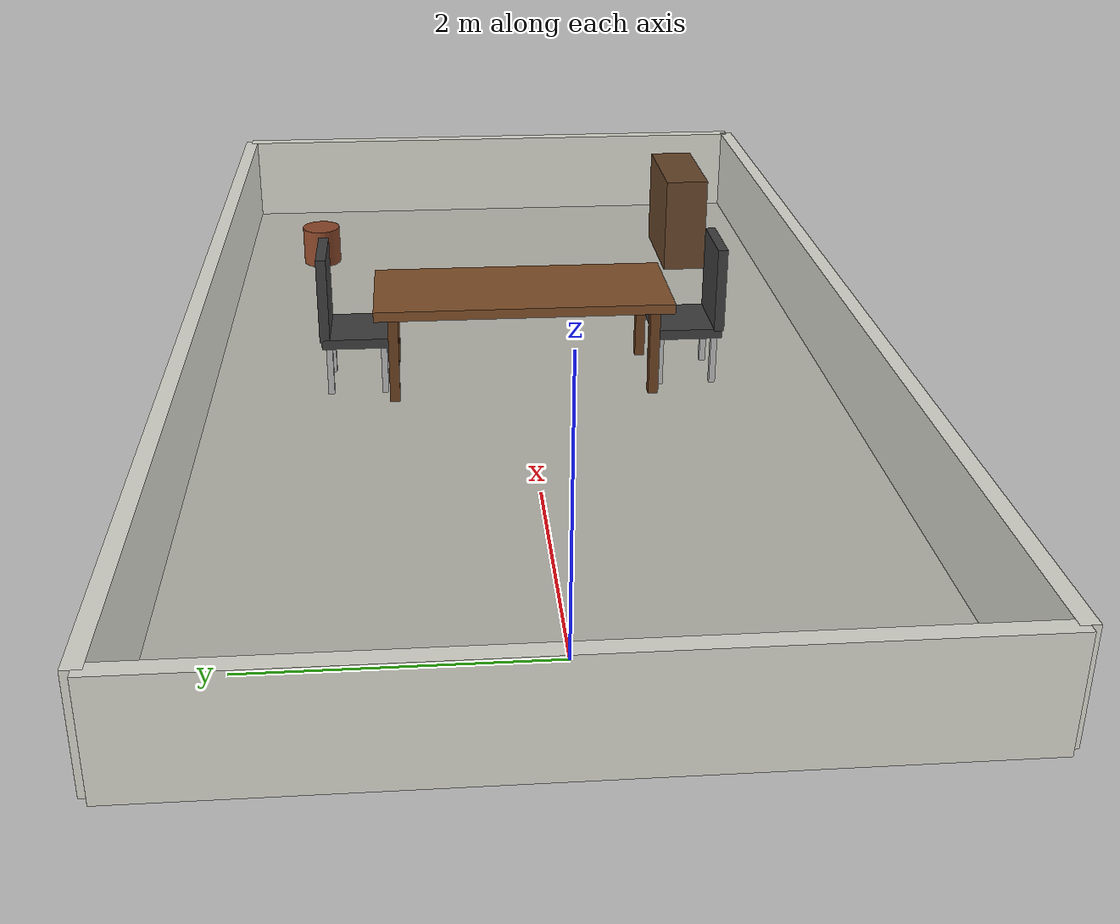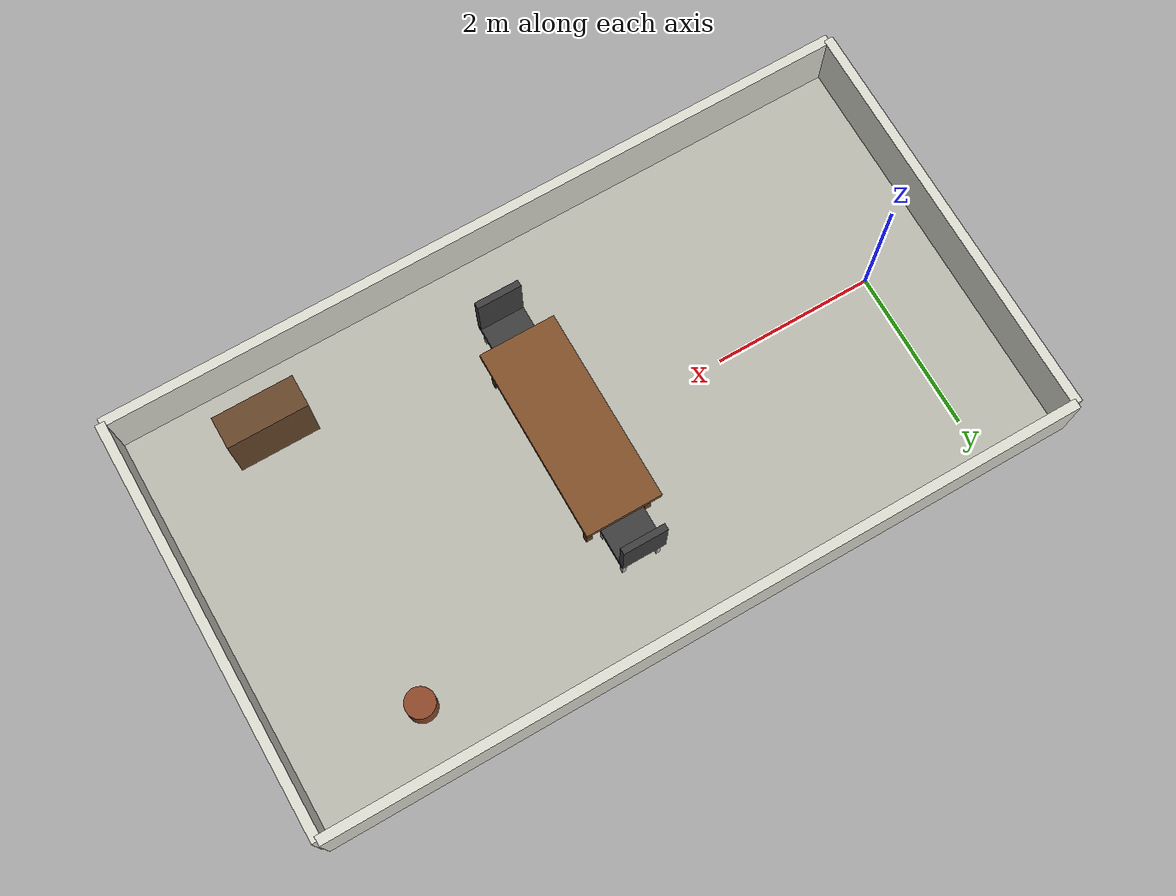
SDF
<sdf version="1.6">
 <world name="my_tiago_room">
  <physics name="default_physics" type="ode">
   <max_step_size>0.001</max_step_size>
   <real_time_factor>1.0</real_time_factor>
   <real_time_update_rate>1000</real_time_update_rate>
  </physics>
  <scene>
   <ambient>0.65 0.65 0.65 1</ambient>
   <background>0.78 0.82 0.86 1</background>
   <shadows>true</shadows>
  </scene>
  <include><uri>model://sun</uri></include>
  <model name="simple_room">
   <static>true</static>
   <link name="floor">
    <pose>3.75 0 -0.025 0 0 0</pose>
    <collision name="collision"><geometry><box><size>9.5 5.2 0.05</size></box></geometry></collision>
    <visual name="visual">
     <geometry><box><size>9.5 5.2 0.05</size></box></geometry>
     <material><ambient>0.72 0.72 0.68 1</ambient><diffuse>0.72 0.72 0.68 1</diffuse></material>
    </visual>
   </link>
   <link name="north_wall">
    <pose>3.75 2.6 0.4 0 0 0</pose>
    <collision name="collision"><geometry><box><size>9.5 0.12 0.8</size></box></geometry></collision>
    <visual name="visual">
     <geometry><box><size>9.5 0.12 0.8</size></box></geometry>
     <material><ambient>0.86 0.86 0.82 1</ambient><diffuse>0.86 0.86 0.82 1</diffuse></material>
    </visual>
   </link>
   <link name="south_wall">
    <pose>3.75 -2.6 0.4 0 0 0</pose>
    <collision name="collision"><geometry><box><size>9.5 0.12 0.8</size></box></geometry></collision>
    <visual name="visual">
     <geometry><box><size>9.5 0.12 0.8</size></box></geometry>
     <material><ambient>0.86 0.86 0.82 1</ambient><diffuse>0.86 0.86 0.82 1</diffuse></material>
    </visual>
   </link>
   <link name="east_wall">
    <pose>8.5 0 0.4 0 0 0</pose>
    <collision name="collision"><geometry><box><size>0.12 5.2 0.8</size></box></geometry></collision>
    <visual name="visual">
     <geometry><box><size>0.12 5.2 0.8</size></box></geometry>
     <material><ambient>0.86 0.86 0.82 1</ambient><diffuse>0.86 0.86 0.82 1</diffuse></material>
    </visual>
   </link>
   <link name="west_wall">
    <pose>-1.0 0 0.4 0 0 0</pose>
    <collision name="collision"><geometry><box><size>0.12 5.2 0.8</size></box></geometry></collision>
    <visual name="visual">
     <geometry><box><size>0.12 5.2 0.8</size></box></geometry>
     <material><ambient>0.86 0.86 0.82 1</ambient><diffuse>0.86 0.86 0.82 1</diffuse></material>
    </visual>
   </link>
  </model>
  <model name="center_table">
   <static>true</static>
   <link name="table_top">
    <pose>4.0 0 0.76 0 0 1.5708</pose>
    <collision name="collision"><geometry><box><size>2.4 0.95 0.08</size></box></geometry></collision>
    <visual name="visual">
     <geometry><box><size>2.4 0.95 0.08</size></box></geometry>
     <material><ambient>0.42 0.26 0.13 1</ambient><diffuse>0.50 0.31 0.16 1</diffuse></material>
    </visual>
   </link>
   <link name="leg_front_left">
    <pose>3.62 -1.05 0.37 0 0 0</pose>
    <collision name="collision"><geometry><box><size>0.08 0.08 0.74</size></box></geometry></collision>
    <visual name="visual">
     <geometry><box><size>0.08 0.08 0.74</size></box></geometry>
     <material><ambient>0.35 0.20 0.10 1</ambient><diffuse>0.42 0.25 0.12 1</diffuse></material>
    </visual>
   </link>
   <link name="leg_front_right">
    <pose>3.62 1.05 0.37 0 0 0</pose>
    <collision name="collision"><geometry><box><size>0.08 0.08 0.74</size></box></geometry></collision>
    <visual name="visual">
     <geometry><box><size>0.08 0.08 0.74</size></box></geometry>
     <material><ambient>0.35 0.20 0.10 1</ambient><diffuse>0.42 0.25 0.12 1</diffuse></material>
    </visual>
   </link>
   <link name="leg_back_left">
    <pose>4.38 -1.05 0.37 0 0 0</pose>
    <collision name="collision"><geometry><box><size>0.08 0.08 0.74</size></box></geometry></collision>
    <visual name="visual">
     <geometry><box><size>0.08 0.08 0.74</size></box></geometry>
     <material><ambient>0.35 0.20 0.10 1</ambient><diffuse>0.42 0.25 0.12 1</diffuse></material>
    </visual>
   </link>
   <link name="leg_back_right">
    <pose>4.38 1.05 0.37 0 0 0</pose>
    <collision name="collision"><geometry><box><size>0.08 0.08 0.74</size></box></geometry></collision>
    <visual name="visual">
     <geometry><box><size>0.08 0.08 0.74</size></box></geometry>
     <material><ambient>0.35 0.20 0.10 1</ambient><diffuse>0.42 0.25 0.12 1</diffuse></material>
    </visual>
   </link>
  </model>
  <model name="chair_south">
   <static>true</static>
   <pose>4.0 -1.35 0 0 0 0</pose>
   <link name="seat">
    <pose>0 0 0.45 0 0 0</pose>
    <collision name="collision"><geometry><box><size>0.55 0.55 0.08</size></box></geometry></collision>
    <visual name="visual">
     <geometry><box><size>0.55 0.55 0.08</size></box></geometry>
     <material><ambient>0.18 0.18 0.18 1</ambient><diffuse>0.24 0.24 0.24 1</diffuse></material>
    </visual>
   </link>
   <link name="back">
    <pose>0 -0.25 0.82 0 0 0</pose>
    <collision name="collision"><geometry><box><size>0.55 0.08 0.7</size></box></geometry></collision>
    <visual name="visual">
     <geometry><box><size>0.55 0.08 0.7</size></box></geometry>
     <material><ambient>0.18 0.18 0.18 1</ambient><diffuse>0.24 0.24 0.24 1</diffuse></material>
    </visual>
   </link>
   <link name="legs">
    <pose>0 0 0.22 0 0 0</pose>
    <visual name="front_left">
     <pose>0.22 0.22 0 0 0 0</pose>
     <geometry><box><size>0.05 0.05 0.44</size></box></geometry>
    </visual>
    <visual name="front_right">
     <pose>-0.22 0.22 0 0 0 0</pose>
     <geometry><box><size>0.05 0.05 0.44</size></box></geometry>
    </visual>
    <visual name="back_left">
     <pose>0.22 -0.22 0 0 0 0</pose>
     <geometry><box><size>0.05 0.05 0.44</size></box></geometry>
    </visual>
    <visual name="back_right">
     <pose>-0.22 -0.22 0 0 0 0</pose>
     <geometry><box><size>0.05 0.05 0.44</size></box></geometry>
    </visual>
   </link>
  </model>
  <model name="chair_north">
   <static>true</static>
   <pose>4.0 1.35 0 0 0 3.14159</pose>
   <link name="seat">
    <pose>0 0 0.45 0 0 0</pose>
    <collision name="collision"><geometry><box><size>0.55 0.55 0.08</size></box></geometry></collision>
    <visual name="visual">
     <geometry><box><size>0.55 0.55 0.08</size></box></geometry>
     <material><ambient>0.18 0.18 0.18 1</ambient><diffuse>0.24 0.24 0.24 1</diffuse></material>
    </visual>
   </link>
   <link name="back">
    <pose>0 -0.25 0.82 0 0 0</pose>
    <collision name="collision"><geometry><box><size>0.55 0.08 0.7</size></box></geometry></collision>
    <visual name="visual">
     <geometry><box><size>0.55 0.08 0.7</size></box></geometry>
     <material><ambient>0.18 0.18 0.18 1</ambient><diffuse>0.24 0.24 0.24 1</diffuse></material>
    </visual>
   </link>
   <link name="legs">
    <pose>0 0 0.22 0 0 0</pose>
    <visual name="front_left">
     <pose>0.22 0.22 0 0 0 0</pose>
     <geometry><box><size>0.05 0.05 0.44</size></box></geometry>
    </visual>
    <visual name="front_right">
     <pose>-0.22 0.22 0 0 0 0</pose>
     <geometry><box><size>0.05 0.05 0.44</size></box></geometry>
    </visual>
    <visual name="back_left">
     <pose>0.22 -0.22 0 0 0 0</pose>
     <geometry><box><size>0.05 0.05 0.44</size></box></geometry>
    </visual>
    <visual name="back_right">
     <pose>-0.22 -0.22 0 0 0 0</pose>
     <geometry><box><size>0.05 0.05 0.44</size></box></geometry>
    </visual>
   </link>
  </model>
  <model name="side_cabinet">
   <static>true</static>
   <pose>6.9 -1.8 0.45 0 0 0</pose>
   <link name="body">
    <collision name="collision"><geometry><box><size>1.0 0.4 0.9</size></box></geometry></collision>
    <visual name="visual">
     <geometry><box><size>1.0 0.4 0.9</size></box></geometry>
     <material><ambient>0.32 0.22 0.14 1</ambient><diffuse>0.4 0.27 0.16 1</diffuse></material>
    </visual>
   </link>
  </model>
  <model name="plant_pot">
   <static>true</static>
   <pose>6.9 1.8 0 0 0 0</pose>
   <link name="pot">
    <pose>0 0 0.18 0 0 0</pose>
    <collision name="collision">
     <geometry><cylinder><radius>0.18</radius><length>0.36</length></cylinder></geometry>
    </collision>
    <visual name="visual">
     <geometry><cylinder><radius>0.18</radius><length>0.36</length></cylinder></geometry>
     <material><ambient>0.45 0.22 0.12 1</ambient><diffuse>0.55 0.28 0.16 1</diffuse></material>
    </visual>
   </link>
  </model>
 </world>
</sdf>
